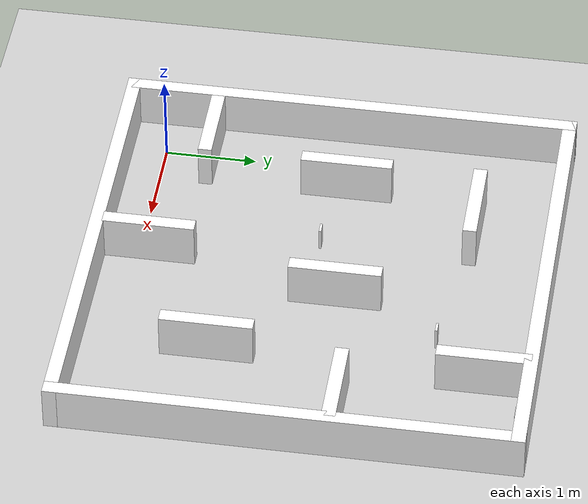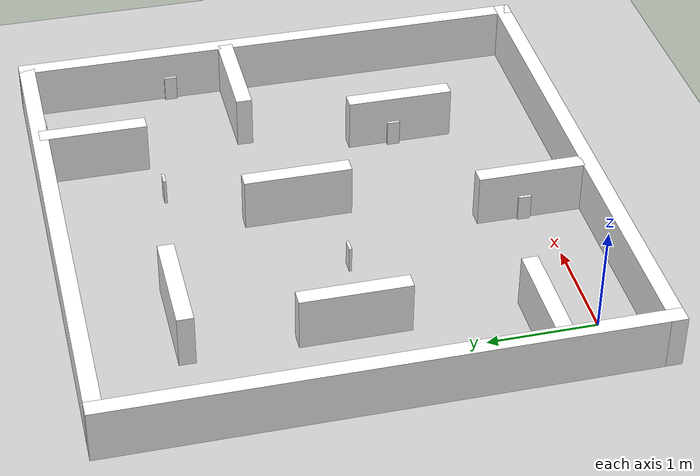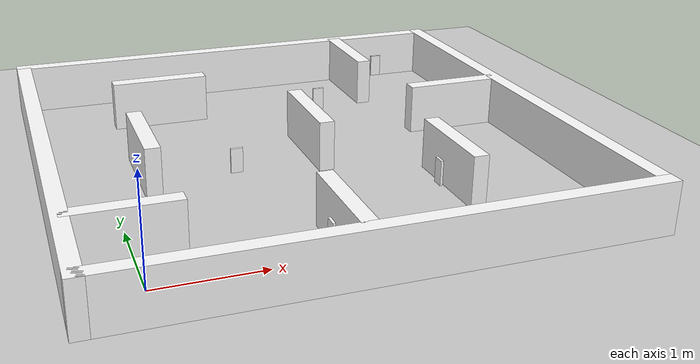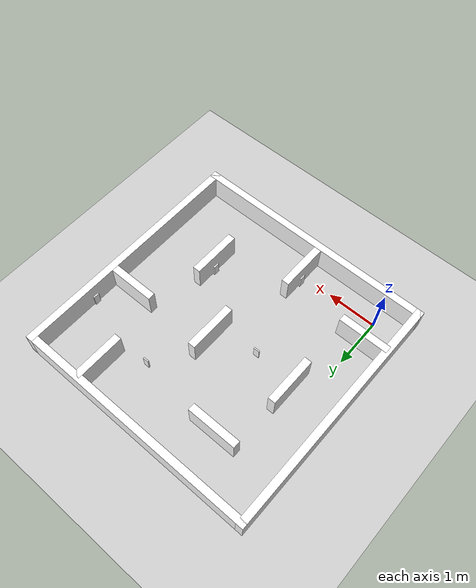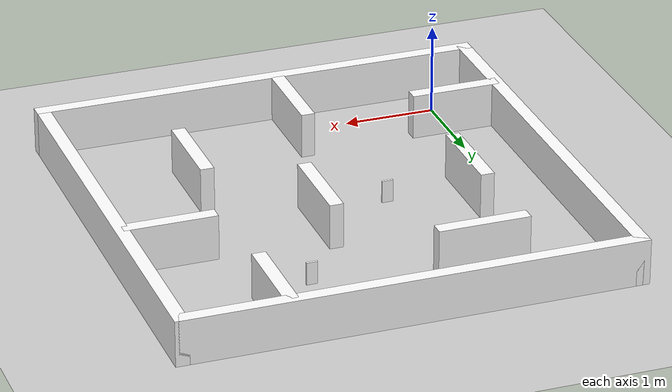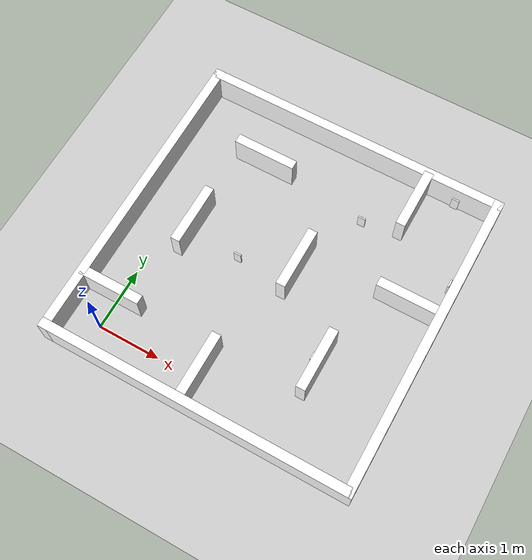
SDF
<sdf version="1.6">
 <world name="default">
  <plugin filename="gz-sim-physics-system" name="gz::sim::systems::Physics"/>
  <plugin filename="gz-sim-user-commands-system" name="gz::sim::systems::UserCommands"/>
  <plugin filename="gz-sim-scene-broadcaster-system" name="gz::sim::systems::SceneBroadcaster"/>
  <plugin filename="gz-sim-sensors-system" name="gz::sim::systems::Sensors">
   <render_engine>ogre2</render_engine>
  </plugin>
  <plugin filename="gz-sim-imu-system" name="gz::sim::systems::Imu"/>
  <scene><ambient>0.4 0.4 0.4 1</ambient><background>0.7 0.7 0.7 1</background><shadows>0</shadows></scene>
  <light name="sun" type="directional">
   <cast_shadows>0</cast_shadows>
   <pose>0 0 10 0 -0 0</pose>
   <diffuse>0.8 0.8 0.8 1</diffuse>
   <specular>0.2 0.2 0.2 1</specular>
   <attenuation>
    <range>1000</range>
    <constant>0.9</constant>
    <linear>0.01</linear>
    <quadratic>0.001</quadratic>
   </attenuation>
   <direction>-0.5 0.1 -0.9</direction>
  </light>
  <model name="ground_plane">
   <static>1</static>
   <link name="link">
    <collision name="collision">
     <geometry><plane><normal>0 0 1</normal><size>100 100</size></plane></geometry>
     <surface>
      <contact><collide_bitmask>65535</collide_bitmask></contact>
      <friction><ode><mu>100</mu><mu2>50</mu2></ode></friction>
     </surface>
    </collision>
    <visual name="visual">
     <cast_shadows>0</cast_shadows>
     <geometry><plane><normal>0 0 1</normal><size>100 100</size></plane></geometry>
     <material>
      <script><uri>file://media/materials/scripts/gazebo.material</uri><name>Gazebo/Grey</name></script>
     </material>
    </visual>
   </link>
  </model>
  <physics name="default_physics" default="0" type="ode">
   <real_time_update_rate>1000</real_time_update_rate>
   <max_step_size>0.001</max_step_size>
   <real_time_factor>1</real_time_factor>
   <ode>
    <solver>
     <type>quick</type>
     <iters>150</iters>
     <precon_iters>0</precon_iters>
     <sor>1.4</sor>
     <use_dynamic_moi_rescaling>1</use_dynamic_moi_rescaling>
    </solver>
    <constraints>
     <cfm>1e-05</cfm>
     <erp>0.2</erp>
     <contact_max_correcting_vel>2000</contact_max_correcting_vel>
     <contact_surface_layer>0.01</contact_surface_layer>
    </constraints>
   </ode>
  </physics>
  <gravity>0 0 -9.8</gravity>
  <magnetic_field>6e-06 2.3e-05 -4.2e-05</magnetic_field>
  <atmosphere type="adiabatic"/>
  <audio><device>default</device></audio>
  <spherical_coordinates>
   <surface_model>EARTH_WGS84</surface_model>
   <latitude_deg>0</latitude_deg>
   <longitude_deg>0</longitude_deg>
   <elevation>0</elevation>
   <heading_deg>0</heading_deg>
  </spherical_coordinates>
  <model name="turtlebot3_plaza">
   <pose>1.87545 1.97572 0 0 -0 0</pose>
   <link name="Wall_0">
    <collision name="Wall_0_Collision">
     <geometry><box><size>5 0.15 0.5</size></box></geometry>
     <pose>0 0 0.25 0 -0 0</pose>
    </collision>
    <visual name="Wall_0_Visual">
     <pose>0 0 0.25 0 -0 0</pose>
     <geometry><box><size>5 0.15 0.5</size></box></geometry>
     <material>
      <pbr><metal><albedo_map>model://wood/materials/textures/wood.png</albedo_map></metal></pbr>
      <ambient>1 1 1 1</ambient>
      <diffuse>1 1 1 1</diffuse>
     </material>
    </visual>
    <pose>-2.425 0 0 0 -0 1.5708</pose>
   </link>
   <link name="Wall_11">
    <collision name="Wall_11_Collision">
     <geometry><box><size>1 0.15 0.5</size></box></geometry>
     <pose>0 0 0.25 0 -0 0</pose>
    </collision>
    <visual name="Wall_11_Visual">
     <pose>0 0 0.25 0 -0 0</pose>
     <geometry><box><size>1 0.15 0.5</size></box></geometry>
     <material>
      <pbr><metal><albedo_map>model://wood/materials/textures/wood.png</albedo_map></metal></pbr>
      <ambient>1 1 1 1</ambient>
      <diffuse>1 1 1 1</diffuse>
     </material>
    </visual>
    <pose>-1.937 -1.467 0 0 -0 0</pose>
   </link>
   <link name="Wall_13">
    <collision name="Wall_13_Collision">
     <geometry><box><size>1 0.15 0.5</size></box></geometry>
     <pose>0 0 0.25 0 -0 0</pose>
    </collision>
    <visual name="Wall_13_Visual">
     <pose>0 0 0.25 0 -0 0</pose>
     <geometry><box><size>1 0.15 0.5</size></box></geometry>
     <material>
      <pbr><metal><albedo_map>model://wood/materials/textures/wood.png</albedo_map></metal></pbr>
      <ambient>1 1 1 1</ambient>
      <diffuse>1 1 1 1</diffuse>
     </material>
    </visual>
    <pose>-0.22 -1.866 0 0 0 -1.5708</pose>
   </link>
   <link name="Wall_15">
    <collision name="Wall_15_Collision">
     <geometry><box><size>1 0.15 0.5</size></box></geometry>
     <pose>0 0 0.25 0 -0 0</pose>
    </collision>
    <visual name="Wall_15_Visual">
     <pose>0 0 0.25 0 -0 0</pose>
     <geometry><box><size>1 0.15 0.5</size></box></geometry>
     <material>
      <pbr><metal><albedo_map>model://wood/materials/textures/wood.png</albedo_map></metal></pbr>
      <ambient>1 1 1 1</ambient>
      <diffuse>1 1 1 1</diffuse>
     </material>
    </visual>
    <pose>1.195 -1.002 0 0 -0 1.5708</pose>
   </link>
   <link name="Wall_17">
    <collision name="Wall_17_Collision">
     <geometry><box><size>1 0.15 0.5</size></box></geometry>
     <pose>0 0 0.25 0 -0 0</pose>
    </collision>
    <visual name="Wall_17_Visual">
     <pose>0 0 0.25 0 -0 0</pose>
     <geometry><box><size>1 0.15 0.5</size></box></geometry>
     <material>
      <pbr><metal><albedo_map>model://wood/materials/textures/wood.png</albedo_map></metal></pbr>
      <ambient>1 1 1 1</ambient>
      <diffuse>1 1 1 1</diffuse>
     </material>
    </visual>
    <pose>1.288 1.93 0 0 0 -1.5708</pose>
   </link>
   <link name="Wall_19">
    <collision name="Wall_19_Collision">
     <geometry><box><size>1 0.15 0.5</size></box></geometry>
     <pose>0 0 0.25 0 -0 0</pose>
    </collision>
    <visual name="Wall_19_Visual">
     <pose>0 0 0.25 0 -0 0</pose>
     <geometry><box><size>1 0.15 0.5</size></box></geometry>
     <material>
      <pbr><metal><albedo_map>model://wood/materials/textures/wood.png</albedo_map></metal></pbr>
      <ambient>1 1 1 1</ambient>
      <diffuse>1 1 1 1</diffuse>
     </material>
    </visual>
    <pose>1.91128 0.4632 0 0 -0 0</pose>
   </link>
   <link name="Wall_2">
    <collision name="Wall_2_Collision">
     <geometry><box><size>5 0.15 0.5</size></box></geometry>
     <pose>0 0 0.25 0 -0 0</pose>
    </collision>
    <visual name="Wall_2_Visual">
     <pose>0 0 0.25 0 -0 0</pose>
     <geometry><box><size>5 0.15 0.5</size></box></geometry>
     <material>
      <pbr><metal><albedo_map>model://wood/materials/textures/wood.png</albedo_map></metal></pbr>
      <ambient>1 1 1 1</ambient>
      <diffuse>1 1 1 1</diffuse>
     </material>
    </visual>
    <pose>0 2.425 0 0 -0 0</pose>
   </link>
   <link name="Wall_21">
    <collision name="Wall_21_Collision">
     <geometry><box><size>1 0.15 0.5</size></box></geometry>
     <pose>0 0 0.25 0 -0 0</pose>
    </collision>
    <visual name="Wall_21_Visual">
     <pose>0 0 0.25 0 -0 0</pose>
     <geometry><box><size>1 0.15 0.5</size></box></geometry>
     <material>
      <pbr><metal><albedo_map>model://wood/materials/textures/wood.png</albedo_map></metal></pbr>
      <ambient>1 1 1 1</ambient>
      <diffuse>1 1 1 1</diffuse>
     </material>
    </visual>
    <pose>0.204 0.215 0 0 0 -1.5708</pose>
   </link>
   <link name="Wall_3">
    <collision name="Wall_3_Collision">
     <geometry><box><size>5 0.15 0.5</size></box></geometry>
     <pose>0 0 0.25 0 -0 0</pose>
    </collision>
    <visual name="Wall_3_Visual">
     <pose>0 0 0.25 0 -0 0</pose>
     <geometry><box><size>5 0.15 0.5</size></box></geometry>
     <material>
      <pbr><metal><albedo_map>model://wood/materials/textures/wood.png</albedo_map></metal></pbr>
      <ambient>1 1 1 1</ambient>
      <diffuse>1 1 1 1</diffuse>
     </material>
    </visual>
    <pose>2.425 0 0 0 0 -1.5708</pose>
   </link>
   <link name="Wall_4">
    <collision name="Wall_4_Collision">
     <geometry><box><size>5 0.15 0.5</size></box></geometry>
     <pose>0 0 0.25 0 -0 0</pose>
    </collision>
    <visual name="Wall_4_Visual">
     <pose>0 0 0.25 0 -0 0</pose>
     <geometry><box><size>5 0.15 0.5</size></box></geometry>
     <material>
      <pbr><metal><albedo_map>model://wood/materials/textures/wood.png</albedo_map></metal></pbr>
      <ambient>1 1 1 1</ambient>
      <diffuse>1 1 1 1</diffuse>
     </material>
    </visual>
    <pose>0 -2.425 0 0 -0 3.14159</pose>
   </link>
   <link name="Wall_7">
    <collision name="Wall_7_Collision">
     <geometry><box><size>1 0.15 0.5</size></box></geometry>
     <pose>0 0 0.25 0 -0 0</pose>
    </collision>
    <visual name="Wall_7_Visual">
     <pose>0 0 0.25 0 -0 0</pose>
     <geometry><box><size>1 0.15 0.5</size></box></geometry>
     <material>
      <pbr><metal><albedo_map>model://wood/materials/textures/wood.png</albedo_map></metal></pbr>
      <ambient>1 1 1 1</ambient>
      <diffuse>1 1 1 1</diffuse>
     </material>
    </visual>
    <pose>-1.064 1.548 0 0 -0 0</pose>
   </link>
   <link name="Wall_9">
    <collision name="Wall_9_Collision">
     <geometry><box><size>1 0.15 0.5</size></box></geometry>
     <pose>0 0 0.25 0 -0 0</pose>
    </collision>
    <visual name="Wall_9_Visual">
     <pose>0 0 0.25 0 -0 0</pose>
     <geometry><box><size>1 0.15 0.5</size></box></geometry>
     <material>
      <pbr><metal><albedo_map>model://wood/materials/textures/wood.png</albedo_map></metal></pbr>
      <ambient>1 1 1 1</ambient>
      <diffuse>1 1 1 1</diffuse>
     </material>
    </visual>
    <pose>-1.502 0.092 0 0 0 -1.5708</pose>
   </link>
   <static>1</static>
  </model>
  <model name="sign_left">
   <static>1</static>
   <link name="box">
    <collision name="collision"><geometry><box><size>0.12 0.025 0.25</size></box></geometry></collision>
    <visual name="visual">
     <geometry><box><size>0.12 0.025 0.25</size></box></geometry>
     <material>
      <pbr><metal><albedo_map>model://sign_left/materials/textures/sign_left.png</albedo_map></metal></pbr>
      <ambient>1 1 1 1</ambient>
      <diffuse>1 1 1 1</diffuse>
     </material>
    </visual>
   </link>
   <pose>1.55963 0.175611 0.131938 0 0 -1.58545</pose>
  </model>
  <model name="sign_left_clone">
   <static>1</static>
   <link name="box">
    <collision name="collision"><geometry><box><size>0.12 0.025 0.25</size></box></geometry></collision>
    <visual name="visual">
     <geometry><box><size>0.12 0.025 0.25</size></box></geometry>
     <material>
      <pbr><metal><albedo_map>model://sign_left/materials/textures/sign_left.png</albedo_map></metal></pbr>
      <ambient>1 1 1 1</ambient>
      <diffuse>1 1 1 1</diffuse>
     </material>
    </visual>
   </link>
   <pose>2.96136 1.0479 0.131938 0 0 -1.58545</pose>
  </model>
  <model name="sign_left_clone_clone">
   <static>1</static>
   <link name="box">
    <collision name="collision"><geometry><box><size>0.12 0.025 0.25</size></box></geometry></collision>
    <visual name="visual">
     <geometry><box><size>0.12 0.025 0.25</size></box></geometry>
     <material>
      <pbr><metal><albedo_map>model://sign_left/materials/textures/sign_left.png</albedo_map></metal></pbr>
      <ambient>1 1 1 1</ambient>
      <diffuse>1 1 1 1</diffuse>
     </material>
    </visual>
   </link>
   <pose>4.19986 3.01241 0.131938 0 0 -1.58545</pose>
  </model>
  <model name="sign_right">
   <static>1</static>
   <link name="box">
    <collision name="collision"><geometry><box><size>0.12 0.025 0.25</size></box></geometry></collision>
    <visual name="visual">
     <geometry><box><size>0.12 0.025 0.25</size></box></geometry>
     <material>
      <pbr><metal><albedo_map>model://sign_right/materials/textures/sign_right.png</albedo_map></metal></pbr>
      <ambient>1 1 1 1</ambient>
      <diffuse>1 1 1 1</diffuse>
     </material>
    </visual>
   </link>
   <pose>1.2347 1.90712 0.134175 0 -0 0</pose>
  </model>
  <model name="sign_right_clone">
   <static>1</static>
   <link name="box">
    <collision name="collision"><geometry><box><size>0.12 0.025 0.25</size></box></geometry></collision>
    <visual name="visual">
     <geometry><box><size>0.12 0.025 0.25</size></box></geometry>
     <material>
      <pbr><metal><albedo_map>model://sign_right/materials/textures/sign_right.png</albedo_map></metal></pbr>
      <ambient>1 1 1 1</ambient>
      <diffuse>1 1 1 1</diffuse>
     </material>
    </visual>
   </link>
   <pose>2.58044 3.34167 0.134175 0 -0 0</pose>
  </model>
  <model name="sign_stop">
   <static>1</static>
   <link name="box">
    <collision name="collision"><geometry><box><size>0.12 0.025 0.25</size></box></geometry></collision>
    <visual name="visual">
     <geometry><box><size>0.12 0.025 0.25</size></box></geometry>
     <material>
      <pbr><metal><albedo_map>model://sign_stop/materials/textures/sign_stop.png</albedo_map></metal></pbr>
      <ambient>1 1 1 1</ambient>
      <diffuse>1 1 1 1</diffuse>
     </material>
    </visual>
   </link>
   <pose>3.69568 4.31208 0.133009 0 -0 0</pose>
  </model>
 </world>
</sdf>
